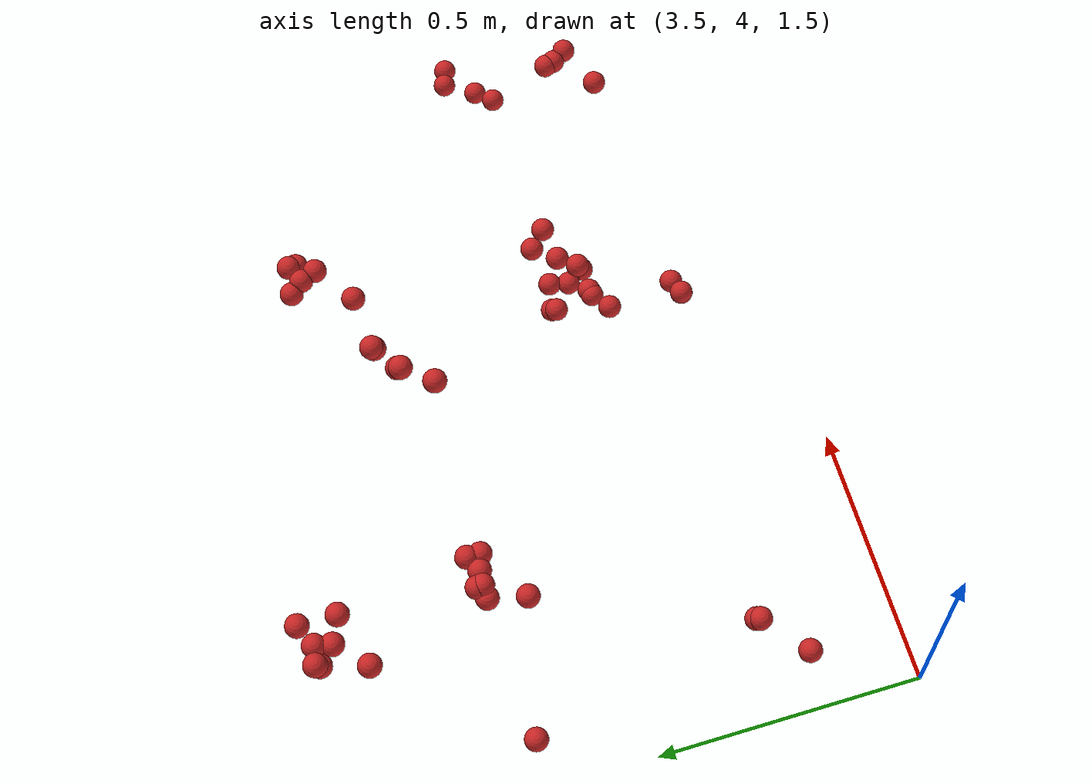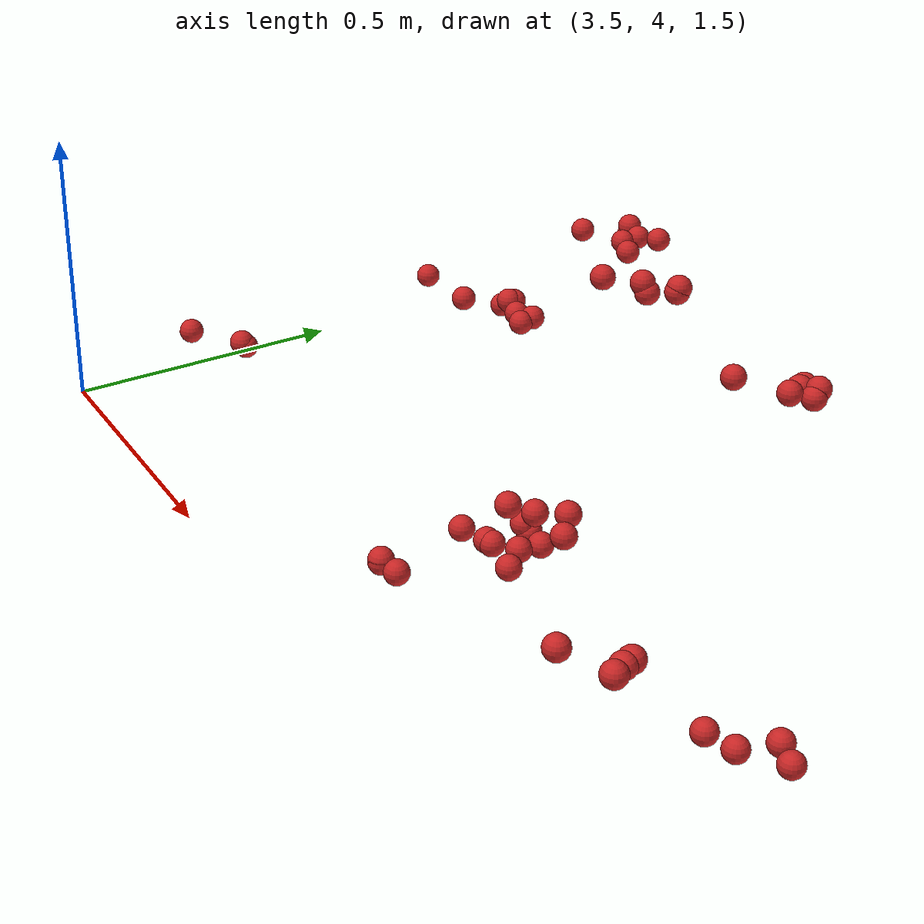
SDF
<sdf version="1.4">
 <model name="fruit_population">
  <static>true</static>
  <link name="fruit_8">
   <pose>4.800786928065491 4.220000212152883 1.6644385118078058 0 0 0</pose>
   <collision name="fruit_collision_8"><geometry><sphere><radius>0.022</radius></sphere></geometry></collision>
   <visual name="visual">
    <geometry><sphere><radius>0.022</radius></sphere></geometry>
    <material><script><name>Gazebo/Red</name></script></material>
   </visual>
   <inertial>
    <mass>0.05</mass>
    <inertia>
     <ixx>9.679999999999999e-06</ixx>
     <ixy>0.0</ixy>
     <ixz>0.0</ixz>
     <iyy>9.679999999999999e-06</iyy>
     <iyz>0.0</iyz>
     <izz>9.679999999999999e-06</izz>
    </inertia>
   </inertial>
   <sensor name="fruit_contact_8" type="contact">
    <plugin name="contact_plugin_8" filename="libcontact_plugin.so"/>
    <contact><collision>fruit_collision_8</collision><topic>fruit_contact_topic_8</topic></contact>
   </sensor>
  </link>
  <link name="fruit_16">
   <pose>3.8010586235003334 4.648232293543347 1.6679768831539061 0 0 0</pose>
   <collision name="fruit_collision_16"><geometry><sphere><radius>0.022</radius></sphere></geometry></collision>
   <visual name="visual">
    <geometry><sphere><radius>0.022</radius></sphere></geometry>
    <material><script><name>Gazebo/Red</name></script></material>
   </visual>
   <inertial>
    <mass>0.05</mass>
    <inertia>
     <ixx>9.679999999999999e-06</ixx>
     <ixy>0.0</ixy>
     <ixz>0.0</ixz>
     <iyy>9.679999999999999e-06</iyy>
     <iyz>0.0</iyz>
     <izz>9.679999999999999e-06</izz>
    </inertia>
   </inertial>
   <sensor name="fruit_contact_16" type="contact">
    <plugin name="contact_plugin_16" filename="libcontact_plugin.so"/>
    <contact><collision>fruit_collision_16</collision><topic>fruit_contact_topic_16</topic></contact>
   </sensor>
  </link>
  <link name="fruit_45">
   <pose>3.5760182626768957 4.195160195155106 1.6130695969784774 0 0 0</pose>
   <collision name="fruit_collision_45"><geometry><sphere><radius>0.022</radius></sphere></geometry></collision>
   <visual name="visual">
    <geometry><sphere><radius>0.022</radius></sphere></geometry>
    <material><script><name>Gazebo/Red</name></script></material>
   </visual>
   <inertial>
    <mass>0.05</mass>
    <inertia>
     <ixx>9.679999999999999e-06</ixx>
     <ixy>0.0</ixy>
     <ixz>0.0</ixz>
     <iyy>9.679999999999999e-06</iyy>
     <iyz>0.0</iyz>
     <izz>9.679999999999999e-06</izz>
    </inertia>
   </inertial>
   <sensor name="fruit_contact_45" type="contact">
    <plugin name="contact_plugin_45" filename="libcontact_plugin.so"/>
    <contact><collision>fruit_collision_45</collision><topic>fruit_contact_topic_45</topic></contact>
   </sensor>
  </link>
  <link name="fruit_85">
   <pose>4.354477763276299 4.325203728067418 1.5766600767156744 0 0 0</pose>
   <collision name="fruit_collision_85"><geometry><sphere><radius>0.022</radius></sphere></geometry></collision>
   <visual name="visual">
    <geometry><sphere><radius>0.022</radius></sphere></geometry>
    <material><script><name>Gazebo/Red</name></script></material>
   </visual>
   <inertial>
    <mass>0.05</mass>
    <inertia>
     <ixx>9.679999999999999e-06</ixx>
     <ixy>0.0</ixy>
     <ixz>0.0</ixz>
     <iyy>9.679999999999999e-06</iyy>
     <iyz>0.0</iyz>
     <izz>9.679999999999999e-06</izz>
    </inertia>
   </inertial>
   <sensor name="fruit_contact_85" type="contact">
    <plugin name="contact_plugin_85" filename="libcontact_plugin.so"/>
    <contact><collision>fruit_collision_85</collision><topic>fruit_contact_topic_85</topic></contact>
   </sensor>
  </link>
  <link name="fruit_114">
   <pose>4.423361353055806 4.369155187507838 1.6454701443695605 0 0 0</pose>
   <collision name="fruit_collision_114"><geometry><sphere><radius>0.022</radius></sphere></geometry></collision>
   <visual name="visual">
    <geometry><sphere><radius>0.022</radius></sphere></geometry>
    <material><script><name>Gazebo/Red</name></script></material>
   </visual>
   <inertial>
    <mass>0.05</mass>
    <inertia>
     <ixx>9.679999999999999e-06</ixx>
     <ixy>0.0</ixy>
     <ixz>0.0</ixz>
     <iyy>9.679999999999999e-06</iyy>
     <iyz>0.0</iyz>
     <izz>9.679999999999999e-06</izz>
    </inertia>
   </inertial>
   <sensor name="fruit_contact_114" type="contact">
    <plugin name="contact_plugin_114" filename="libcontact_plugin.so"/>
    <contact><collision>fruit_collision_114</collision><topic>fruit_contact_topic_114</topic></contact>
   </sensor>
  </link>
  <link name="fruit_116">
   <pose>4.912617143801908 4.404082833513764 1.5214832260241566 0 0 0</pose>
   <collision name="fruit_collision_116"><geometry><sphere><radius>0.022</radius></sphere></geometry></collision>
   <visual name="visual">
    <geometry><sphere><radius>0.022</radius></sphere></geometry>
    <material><script><name>Gazebo/Red</name></script></material>
   </visual>
   <inertial>
    <mass>0.05</mass>
    <inertia>
     <ixx>9.679999999999999e-06</ixx>
     <ixy>0.0</ixy>
     <ixz>0.0</ixz>
     <iyy>9.679999999999999e-06</iyy>
     <iyz>0.0</iyz>
     <izz>9.679999999999999e-06</izz>
    </inertia>
   </inertial>
   <sensor name="fruit_contact_116" type="contact">
    <plugin name="contact_plugin_116" filename="libcontact_plugin.so"/>
    <contact><collision>fruit_collision_116</collision><topic>fruit_contact_topic_116</topic></contact>
   </sensor>
  </link>
  <link name="fruit_118">
   <pose>4.4188331815659385 4.800424668343499 1.7561250913964206 0 0 0</pose>
   <collision name="fruit_collision_118"><geometry><sphere><radius>0.022</radius></sphere></geometry></collision>
   <visual name="visual">
    <geometry><sphere><radius>0.022</radius></sphere></geometry>
    <material><script><name>Gazebo/Red</name></script></material>
   </visual>
   <inertial>
    <mass>0.05</mass>
    <inertia>
     <ixx>9.679999999999999e-06</ixx>
     <ixy>0.0</ixy>
     <ixz>0.0</ixz>
     <iyy>9.679999999999999e-06</iyy>
     <iyz>0.0</iyz>
     <izz>9.679999999999999e-06</izz>
    </inertia>
   </inertial>
   <sensor name="fruit_contact_118" type="contact">
    <plugin name="contact_plugin_118" filename="libcontact_plugin.so"/>
    <contact><collision>fruit_collision_118</collision><topic>fruit_contact_topic_118</topic></contact>
   </sensor>
  </link>
  <link name="fruit_126">
   <pose>3.742768854331844 4.9462025659549145 1.7166812805871299 0 0 0</pose>
   <collision name="fruit_collision_126"><geometry><sphere><radius>0.022</radius></sphere></geometry></collision>
   <visual name="visual">
    <geometry><sphere><radius>0.022</radius></sphere></geometry>
    <material><script><name>Gazebo/Red</name></script></material>
   </visual>
   <inertial>
    <mass>0.05</mass>
    <inertia>
     <ixx>9.679999999999999e-06</ixx>
     <ixy>0.0</ixy>
     <ixz>0.0</ixz>
     <iyy>9.679999999999999e-06</iyy>
     <iyz>0.0</iyz>
     <izz>9.679999999999999e-06</izz>
    </inertia>
   </inertial>
   <sensor name="fruit_contact_126" type="contact">
    <plugin name="contact_plugin_126" filename="libcontact_plugin.so"/>
    <contact><collision>fruit_collision_126</collision><topic>fruit_contact_topic_126</topic></contact>
   </sensor>
  </link>
  <link name="fruit_172">
   <pose>4.1660404960261275 4.70667149064895 1.8528183899163075 0 0 0</pose>
   <collision name="fruit_collision_172"><geometry><sphere><radius>0.022</radius></sphere></geometry></collision>
   <visual name="visual">
    <geometry><sphere><radius>0.022</radius></sphere></geometry>
    <material><script><name>Gazebo/Red</name></script></material>
   </visual>
   <inertial>
    <mass>0.05</mass>
    <inertia>
     <ixx>9.679999999999999e-06</ixx>
     <ixy>0.0</ixy>
     <ixz>0.0</ixz>
     <iyy>9.679999999999999e-06</iyy>
     <iyz>0.0</iyz>
     <izz>9.679999999999999e-06</izz>
    </inertia>
   </inertial>
   <sensor name="fruit_contact_172" type="contact">
    <plugin name="contact_plugin_172" filename="libcontact_plugin.so"/>
    <contact><collision>fruit_collision_172</collision><topic>fruit_contact_topic_172</topic></contact>
   </sensor>
  </link>
  <link name="fruit_183">
   <pose>4.453477421447629 4.400530145803158 1.6378853848655108 0 0 0</pose>
   <collision name="fruit_collision_183"><geometry><sphere><radius>0.022</radius></sphere></geometry></collision>
   <visual name="visual">
    <geometry><sphere><radius>0.022</radius></sphere></geometry>
    <material><script><name>Gazebo/Red</name></script></material>
   </visual>
   <inertial>
    <mass>0.05</mass>
    <inertia>
     <ixx>9.679999999999999e-06</ixx>
     <ixy>0.0</ixy>
     <ixz>0.0</ixz>
     <iyy>9.679999999999999e-06</iyy>
     <iyz>0.0</iyz>
     <izz>9.679999999999999e-06</izz>
    </inertia>
   </inertial>
   <sensor name="fruit_contact_183" type="contact">
    <plugin name="contact_plugin_183" filename="libcontact_plugin.so"/>
    <contact><collision>fruit_collision_183</collision><topic>fruit_contact_topic_183</topic></contact>
   </sensor>
  </link>
  <link name="fruit_184">
   <pose>4.405410311610533 4.351728202609661 1.56812083813322 0 0 0</pose>
   <collision name="fruit_collision_184"><geometry><sphere><radius>0.022</radius></sphere></geometry></collision>
   <visual name="visual">
    <geometry><sphere><radius>0.022</radius></sphere></geometry>
    <material><script><name>Gazebo/Red</name></script></material>
   </visual>
   <inertial>
    <mass>0.05</mass>
    <inertia>
     <ixx>9.679999999999999e-06</ixx>
     <ixy>0.0</ixy>
     <ixz>0.0</ixz>
     <iyy>9.679999999999999e-06</iyy>
     <iyz>0.0</iyz>
     <izz>9.679999999999999e-06</izz>
    </inertia>
   </inertial>
   <sensor name="fruit_contact_184" type="contact">
    <plugin name="contact_plugin_184" filename="libcontact_plugin.so"/>
    <contact><collision>fruit_collision_184</collision><topic>fruit_contact_topic_184</topic></contact>
   </sensor>
  </link>
  <link name="fruit_194">
   <pose>3.658850037830228 4.259778614274349 1.6105875539122085 0 0 0</pose>
   <collision name="fruit_collision_194"><geometry><sphere><radius>0.022</radius></sphere></geometry></collision>
   <visual name="visual">
    <geometry><sphere><radius>0.022</radius></sphere></geometry>
    <material><script><name>Gazebo/Red</name></script></material>
   </visual>
   <inertial>
    <mass>0.05</mass>
    <inertia>
     <ixx>9.679999999999999e-06</ixx>
     <ixy>0.0</ixy>
     <ixz>0.0</ixz>
     <iyy>9.679999999999999e-06</iyy>
     <iyz>0.0</iyz>
     <izz>9.679999999999999e-06</izz>
    </inertia>
   </inertial>
   <sensor name="fruit_contact_194" type="contact">
    <plugin name="contact_plugin_194" filename="libcontact_plugin.so"/>
    <contact><collision>fruit_collision_194</collision><topic>fruit_contact_topic_194</topic></contact>
   </sensor>
  </link>
  <link name="fruit_206">
   <pose>5.019707370111052 4.47834298955333 1.5080253796429584 0 0 0</pose>
   <collision name="fruit_collision_206"><geometry><sphere><radius>0.022</radius></sphere></geometry></collision>
   <visual name="visual">
    <geometry><sphere><radius>0.022</radius></sphere></geometry>
    <material><script><name>Gazebo/Red</name></script></material>
   </visual>
   <inertial>
    <mass>0.05</mass>
    <inertia>
     <ixx>9.679999999999999e-06</ixx>
     <ixy>0.0</ixy>
     <ixz>0.0</ixz>
     <iyy>9.679999999999999e-06</iyy>
     <iyz>0.0</iyz>
     <izz>9.679999999999999e-06</izz>
    </inertia>
   </inertial>
   <sensor name="fruit_contact_206" type="contact">
    <plugin name="contact_plugin_206" filename="libcontact_plugin.so"/>
    <contact><collision>fruit_collision_206</collision><topic>fruit_contact_topic_206</topic></contact>
   </sensor>
  </link>
  <link name="fruit_223">
   <pose>4.498775829638822 4.854358825902593 1.750554658753304 0 0 0</pose>
   <collision name="fruit_collision_223"><geometry><sphere><radius>0.022</radius></sphere></geometry></collision>
   <visual name="visual">
    <geometry><sphere><radius>0.022</radius></sphere></geometry>
    <material><script><name>Gazebo/Red</name></script></material>
   </visual>
   <inertial>
    <mass>0.05</mass>
    <inertia>
     <ixx>9.679999999999999e-06</ixx>
     <ixy>0.0</ixy>
     <ixz>0.0</ixz>
     <iyy>9.679999999999999e-06</iyy>
     <iyz>0.0</iyz>
     <izz>9.679999999999999e-06</izz>
    </inertia>
   </inertial>
   <sensor name="fruit_contact_223" type="contact">
    <plugin name="contact_plugin_223" filename="libcontact_plugin.so"/>
    <contact><collision>fruit_collision_223</collision><topic>fruit_contact_topic_223</topic></contact>
   </sensor>
  </link>
  <link name="fruit_231">
   <pose>3.8490912041075416 5.04903982708296 1.7154292277089622 0 0 0</pose>
   <collision name="fruit_collision_231"><geometry><sphere><radius>0.022</radius></sphere></geometry></collision>
   <visual name="visual">
    <geometry><sphere><radius>0.022</radius></sphere></geometry>
    <material><script><name>Gazebo/Red</name></script></material>
   </visual>
   <inertial>
    <mass>0.05</mass>
    <inertia>
     <ixx>9.679999999999999e-06</ixx>
     <ixy>0.0</ixy>
     <ixz>0.0</ixz>
     <iyy>9.679999999999999e-06</iyy>
     <iyz>0.0</iyz>
     <izz>9.679999999999999e-06</izz>
    </inertia>
   </inertial>
   <sensor name="fruit_contact_231" type="contact">
    <plugin name="contact_plugin_231" filename="libcontact_plugin.so"/>
    <contact><collision>fruit_collision_231</collision><topic>fruit_contact_topic_231</topic></contact>
   </sensor>
  </link>
  <link name="fruit_276">
   <pose>4.5230287979494594 4.8853600711418945 1.74473065197198 0 0 0</pose>
   <collision name="fruit_collision_276"><geometry><sphere><radius>0.022</radius></sphere></geometry></collision>
   <visual name="visual">
    <geometry><sphere><radius>0.022</radius></sphere></geometry>
    <material><script><name>Gazebo/Red</name></script></material>
   </visual>
   <inertial>
    <mass>0.05</mass>
    <inertia>
     <ixx>9.679999999999999e-06</ixx>
     <ixy>0.0</ixy>
     <ixz>0.0</ixz>
     <iyy>9.679999999999999e-06</iyy>
     <iyz>0.0</iyz>
     <izz>9.679999999999999e-06</izz>
    </inertia>
   </inertial>
   <sensor name="fruit_contact_276" type="contact">
    <plugin name="contact_plugin_276" filename="libcontact_plugin.so"/>
    <contact><collision>fruit_collision_276</collision><topic>fruit_contact_topic_276</topic></contact>
   </sensor>
  </link>
  <link name="fruit_290">
   <pose>3.566881579972993 4.7035963276467765 1.6022946473488755 0 0 0</pose>
   <collision name="fruit_collision_290"><geometry><sphere><radius>0.022</radius></sphere></geometry></collision>
   <visual name="visual">
    <geometry><sphere><radius>0.022</radius></sphere></geometry>
    <material><script><name>Gazebo/Red</name></script></material>
   </visual>
   <inertial>
    <mass>0.05</mass>
    <inertia>
     <ixx>9.679999999999999e-06</ixx>
     <ixy>0.0</ixy>
     <ixz>0.0</ixz>
     <iyy>9.679999999999999e-06</iyy>
     <iyz>0.0</iyz>
     <izz>9.679999999999999e-06</izz>
    </inertia>
   </inertial>
   <sensor name="fruit_contact_290" type="contact">
    <plugin name="contact_plugin_290" filename="libcontact_plugin.so"/>
    <contact><collision>fruit_collision_290</collision><topic>fruit_contact_topic_290</topic></contact>
   </sensor>
  </link>
  <link name="fruit_291">
   <pose>4.980217523034297 4.489495512884834 1.5156227475393103 0 0 0</pose>
   <collision name="fruit_collision_291"><geometry><sphere><radius>0.022</radius></sphere></geometry></collision>
   <visual name="visual">
    <geometry><sphere><radius>0.022</radius></sphere></geometry>
    <material><script><name>Gazebo/Red</name></script></material>
   </visual>
   <inertial>
    <mass>0.05</mass>
    <inertia>
     <ixx>9.679999999999999e-06</ixx>
     <ixy>0.0</ixy>
     <ixz>0.0</ixz>
     <iyy>9.679999999999999e-06</iyy>
     <iyz>0.0</iyz>
     <izz>9.679999999999999e-06</izz>
    </inertia>
   </inertial>
   <sensor name="fruit_contact_291" type="contact">
    <plugin name="contact_plugin_291" filename="libcontact_plugin.so"/>
    <contact><collision>fruit_collision_291</collision><topic>fruit_contact_topic_291</topic></contact>
   </sensor>
  </link>
  <link name="fruit_297">
   <pose>4.950634229804297 4.4326614623602 1.505215922446986 0 0 0</pose>
   <collision name="fruit_collision_297"><geometry><sphere><radius>0.022</radius></sphere></geometry></collision>
   <visual name="visual">
    <geometry><sphere><radius>0.022</radius></sphere></geometry>
    <material><script><name>Gazebo/Red</name></script></material>
   </visual>
   <inertial>
    <mass>0.05</mass>
    <inertia>
     <ixx>9.679999999999999e-06</ixx>
     <ixy>0.0</ixy>
     <ixz>0.0</ixz>
     <iyy>9.679999999999999e-06</iyy>
     <iyz>0.0</iyz>
     <izz>9.679999999999999e-06</izz>
    </inertia>
   </inertial>
   <sensor name="fruit_contact_297" type="contact">
    <plugin name="contact_plugin_297" filename="libcontact_plugin.so"/>
    <contact><collision>fruit_collision_297</collision><topic>fruit_contact_topic_297</topic></contact>
   </sensor>
  </link>
  <link name="fruit_320">
   <pose>4.38446686632288 4.190261901266001 1.5540478652612673 0 0 0</pose>
   <collision name="fruit_collision_320"><geometry><sphere><radius>0.022</radius></sphere></geometry></collision>
   <visual name="visual">
    <geometry><sphere><radius>0.022</radius></sphere></geometry>
    <material><script><name>Gazebo/Red</name></script></material>
   </visual>
   <inertial>
    <mass>0.05</mass>
    <inertia>
     <ixx>9.679999999999999e-06</ixx>
     <ixy>0.0</ixy>
     <ixz>0.0</ixz>
     <iyy>9.679999999999999e-06</iyy>
     <iyz>0.0</iyz>
     <izz>9.679999999999999e-06</izz>
    </inertia>
   </inertial>
   <sensor name="fruit_contact_320" type="contact">
    <plugin name="contact_plugin_320" filename="libcontact_plugin.so"/>
    <contact><collision>fruit_collision_320</collision><topic>fruit_contact_topic_320</topic></contact>
   </sensor>
  </link>
  <link name="fruit_342">
   <pose>4.471371225127946 4.906289188257424 1.7380559076895248 0 0 0</pose>
   <collision name="fruit_collision_342"><geometry><sphere><radius>0.022</radius></sphere></geometry></collision>
   <visual name="visual">
    <geometry><sphere><radius>0.022</radius></sphere></geometry>
    <material><script><name>Gazebo/Red</name></script></material>
   </visual>
   <inertial>
    <mass>0.05</mass>
    <inertia>
     <ixx>9.679999999999999e-06</ixx>
     <ixy>0.0</ixy>
     <ixz>0.0</ixz>
     <iyy>9.679999999999999e-06</iyy>
     <iyz>0.0</iyz>
     <izz>9.679999999999999e-06</izz>
    </inertia>
   </inertial>
   <sensor name="fruit_contact_342" type="contact">
    <plugin name="contact_plugin_342" filename="libcontact_plugin.so"/>
    <contact><collision>fruit_collision_342</collision><topic>fruit_contact_topic_342</topic></contact>
   </sensor>
  </link>
  <link name="fruit_345">
   <pose>4.393212028544922 4.349024499610784 1.5683655938861751 0 0 0</pose>
   <collision name="fruit_collision_345"><geometry><sphere><radius>0.022</radius></sphere></geometry></collision>
   <visual name="visual">
    <geometry><sphere><radius>0.022</radius></sphere></geometry>
    <material><script><name>Gazebo/Red</name></script></material>
   </visual>
   <inertial>
    <mass>0.05</mass>
    <inertia>
     <ixx>9.679999999999999e-06</ixx>
     <ixy>0.0</ixy>
     <ixz>0.0</ixz>
     <iyy>9.679999999999999e-06</iyy>
     <iyz>0.0</iyz>
     <izz>9.679999999999999e-06</izz>
    </inertia>
   </inertial>
   <sensor name="fruit_contact_345" type="contact">
    <plugin name="contact_plugin_345" filename="libcontact_plugin.so"/>
    <contact><collision>fruit_collision_345</collision><topic>fruit_contact_topic_345</topic></contact>
   </sensor>
  </link>
  <link name="fruit_348">
   <pose>4.219062843210501 4.761822163706592 1.8337935369312834 0 0 0</pose>
   <collision name="fruit_collision_348"><geometry><sphere><radius>0.022</radius></sphere></geometry></collision>
   <visual name="visual">
    <geometry><sphere><radius>0.022</radius></sphere></geometry>
    <material><script><name>Gazebo/Red</name></script></material>
   </visual>
   <inertial>
    <mass>0.05</mass>
    <inertia>
     <ixx>9.679999999999999e-06</ixx>
     <ixy>0.0</ixy>
     <ixz>0.0</ixz>
     <iyy>9.679999999999999e-06</iyy>
     <iyz>0.0</iyz>
     <izz>9.679999999999999e-06</izz>
    </inertia>
   </inertial>
   <sensor name="fruit_contact_348" type="contact">
    <plugin name="contact_plugin_348" filename="libcontact_plugin.so"/>
    <contact><collision>fruit_collision_348</collision><topic>fruit_contact_topic_348</topic></contact>
   </sensor>
  </link>
  <link name="fruit_373">
   <pose>4.460210954367017 4.350119424943857 1.5547737811571516 0 0 0</pose>
   <collision name="fruit_collision_373"><geometry><sphere><radius>0.022</radius></sphere></geometry></collision>
   <visual name="visual">
    <geometry><sphere><radius>0.022</radius></sphere></geometry>
    <material><script><name>Gazebo/Red</name></script></material>
   </visual>
   <inertial>
    <mass>0.05</mass>
    <inertia>
     <ixx>9.679999999999999e-06</ixx>
     <ixy>0.0</ixy>
     <ixz>0.0</ixz>
     <iyy>9.679999999999999e-06</iyy>
     <iyz>0.0</iyz>
     <izz>9.679999999999999e-06</izz>
    </inertia>
   </inertial>
   <sensor name="fruit_contact_373" type="contact">
    <plugin name="contact_plugin_373" filename="libcontact_plugin.so"/>
    <contact><collision>fruit_collision_373</collision><topic>fruit_contact_topic_373</topic></contact>
   </sensor>
  </link>
  <link name="fruit_386">
   <pose>3.8518288535181604 4.977507780107205 1.7075925525429145 0 0 0</pose>
   <collision name="fruit_collision_386"><geometry><sphere><radius>0.022</radius></sphere></geometry></collision>
   <visual name="visual">
    <geometry><sphere><radius>0.022</radius></sphere></geometry>
    <material><script><name>Gazebo/Red</name></script></material>
   </visual>
   <inertial>
    <mass>0.05</mass>
    <inertia>
     <ixx>9.679999999999999e-06</ixx>
     <ixy>0.0</ixy>
     <ixz>0.0</ixz>
     <iyy>9.679999999999999e-06</iyy>
     <iyz>0.0</iyz>
     <izz>9.679999999999999e-06</izz>
    </inertia>
   </inertial>
   <sensor name="fruit_contact_386" type="contact">
    <plugin name="contact_plugin_386" filename="libcontact_plugin.so"/>
    <contact><collision>fruit_collision_386</collision><topic>fruit_contact_topic_386</topic></contact>
   </sensor>
  </link>
  <link name="fruit_390">
   <pose>3.8084397391758675 5.029995702410868 1.708661426484611 0 0 0</pose>
   <collision name="fruit_collision_390"><geometry><sphere><radius>0.022</radius></sphere></geometry></collision>
   <visual name="visual">
    <geometry><sphere><radius>0.022</radius></sphere></geometry>
    <material><script><name>Gazebo/Red</name></script></material>
   </visual>
   <inertial>
    <mass>0.05</mass>
    <inertia>
     <ixx>9.679999999999999e-06</ixx>
     <ixy>0.0</ixy>
     <ixz>0.0</ixz>
     <iyy>9.679999999999999e-06</iyy>
     <iyz>0.0</iyz>
     <izz>9.679999999999999e-06</izz>
    </inertia>
   </inertial>
   <sensor name="fruit_contact_390" type="contact">
    <plugin name="contact_plugin_390" filename="libcontact_plugin.so"/>
    <contact><collision>fruit_collision_390</collision><topic>fruit_contact_topic_390</topic></contact>
   </sensor>
  </link>
  <link name="fruit_417">
   <pose>3.908087529457598 4.7320681723559375 1.6547977042032762 0 0 0</pose>
   <collision name="fruit_collision_417"><geometry><sphere><radius>0.022</radius></sphere></geometry></collision>
   <visual name="visual">
    <geometry><sphere><radius>0.022</radius></sphere></geometry>
    <material><script><name>Gazebo/Red</name></script></material>
   </visual>
   <inertial>
    <mass>0.05</mass>
    <inertia>
     <ixx>9.679999999999999e-06</ixx>
     <ixy>0.0</ixy>
     <ixz>0.0</ixz>
     <iyy>9.679999999999999e-06</iyy>
     <iyz>0.0</iyz>
     <izz>9.679999999999999e-06</izz>
    </inertia>
   </inertial>
   <sensor name="fruit_contact_417" type="contact">
    <plugin name="contact_plugin_417" filename="libcontact_plugin.so"/>
    <contact><collision>fruit_collision_417</collision><topic>fruit_contact_topic_417</topic></contact>
   </sensor>
  </link>
  <link name="fruit_425">
   <pose>4.525387391149028 4.408601152501039 1.6325685571147488 0 0 0</pose>
   <collision name="fruit_collision_425"><geometry><sphere><radius>0.022</radius></sphere></geometry></collision>
   <visual name="visual">
    <geometry><sphere><radius>0.022</radius></sphere></geometry>
    <material><script><name>Gazebo/Red</name></script></material>
   </visual>
   <inertial>
    <mass>0.05</mass>
    <inertia>
     <ixx>9.679999999999999e-06</ixx>
     <ixy>0.0</ixy>
     <ixz>0.0</ixz>
     <iyy>9.679999999999999e-06</iyy>
     <iyz>0.0</iyz>
     <izz>9.679999999999999e-06</izz>
    </inertia>
   </inertial>
   <sensor name="fruit_contact_425" type="contact">
    <plugin name="contact_plugin_425" filename="libcontact_plugin.so"/>
    <contact><collision>fruit_collision_425</collision><topic>fruit_contact_topic_425</topic></contact>
   </sensor>
  </link>
  <link name="fruit_467">
   <pose>4.517148446248663 4.898806006746606 1.7547951885936175 0 0 0</pose>
   <collision name="fruit_collision_467"><geometry><sphere><radius>0.022</radius></sphere></geometry></collision>
   <visual name="visual">
    <geometry><sphere><radius>0.022</radius></sphere></geometry>
    <material><script><name>Gazebo/Red</name></script></material>
   </visual>
   <inertial>
    <mass>0.05</mass>
    <inertia>
     <ixx>9.679999999999999e-06</ixx>
     <ixy>0.0</ixy>
     <ixz>0.0</ixz>
     <iyy>9.679999999999999e-06</iyy>
     <iyz>0.0</iyz>
     <izz>9.679999999999999e-06</izz>
    </inertia>
   </inertial>
   <sensor name="fruit_contact_467" type="contact">
    <plugin name="contact_plugin_467" filename="libcontact_plugin.so"/>
    <contact><collision>fruit_collision_467</collision><topic>fruit_contact_topic_467</topic></contact>
   </sensor>
  </link>
  <link name="fruit_471">
   <pose>3.662956399224076 4.265417030570322 1.6032949837999615 0 0 0</pose>
   <collision name="fruit_collision_471"><geometry><sphere><radius>0.022</radius></sphere></geometry></collision>
   <visual name="visual">
    <geometry><sphere><radius>0.022</radius></sphere></geometry>
    <material><script><name>Gazebo/Red</name></script></material>
   </visual>
   <inertial>
    <mass>0.05</mass>
    <inertia>
     <ixx>9.679999999999999e-06</ixx>
     <ixy>0.0</ixy>
     <ixz>0.0</ixz>
     <iyy>9.679999999999999e-06</iyy>
     <iyz>0.0</iyz>
     <izz>9.679999999999999e-06</izz>
    </inertia>
   </inertial>
   <sensor name="fruit_contact_471" type="contact">
    <plugin name="contact_plugin_471" filename="libcontact_plugin.so"/>
    <contact><collision>fruit_collision_471</collision><topic>fruit_contact_topic_471</topic></contact>
   </sensor>
  </link>
  <link name="fruit_494">
   <pose>4.891622021728507 4.256144879168211 1.6639292008848485 0 0 0</pose>
   <collision name="fruit_collision_494"><geometry><sphere><radius>0.022</radius></sphere></geometry></collision>
   <visual name="visual">
    <geometry><sphere><radius>0.022</radius></sphere></geometry>
    <material><script><name>Gazebo/Red</name></script></material>
   </visual>
   <inertial>
    <mass>0.05</mass>
    <inertia>
     <ixx>9.679999999999999e-06</ixx>
     <ixy>0.0</ixy>
     <ixz>0.0</ixz>
     <iyy>9.679999999999999e-06</iyy>
     <iyz>0.0</iyz>
     <izz>9.679999999999999e-06</izz>
    </inertia>
   </inertial>
   <sensor name="fruit_contact_494" type="contact">
    <plugin name="contact_plugin_494" filename="libcontact_plugin.so"/>
    <contact><collision>fruit_collision_494</collision><topic>fruit_contact_topic_494</topic></contact>
   </sensor>
  </link>
  <link name="fruit_497">
   <pose>3.7709259506144805 5.03579120226658 1.7165081634796433 0 0 0</pose>
   <collision name="fruit_collision_497"><geometry><sphere><radius>0.022</radius></sphere></geometry></collision>
   <visual name="visual">
    <geometry><sphere><radius>0.022</radius></sphere></geometry>
    <material><script><name>Gazebo/Red</name></script></material>
   </visual>
   <inertial>
    <mass>0.05</mass>
    <inertia>
     <ixx>9.679999999999999e-06</ixx>
     <ixy>0.0</ixy>
     <ixz>0.0</ixz>
     <iyy>9.679999999999999e-06</iyy>
     <iyz>0.0</iyz>
     <izz>9.679999999999999e-06</izz>
    </inertia>
   </inertial>
   <sensor name="fruit_contact_497" type="contact">
    <plugin name="contact_plugin_497" filename="libcontact_plugin.so"/>
    <contact><collision>fruit_collision_497</collision><topic>fruit_contact_topic_497</topic></contact>
   </sensor>
  </link>
  <link name="fruit_499">
   <pose>4.869997068080471 4.300543848486366 1.6594288500186918 0 0 0</pose>
   <collision name="fruit_collision_499"><geometry><sphere><radius>0.022</radius></sphere></geometry></collision>
   <visual name="visual">
    <geometry><sphere><radius>0.022</radius></sphere></geometry>
    <material><script><name>Gazebo/Red</name></script></material>
   </visual>
   <inertial>
    <mass>0.05</mass>
    <inertia>
     <ixx>9.679999999999999e-06</ixx>
     <ixy>0.0</ixy>
     <ixz>0.0</ixz>
     <iyy>9.679999999999999e-06</iyy>
     <iyz>0.0</iyz>
     <izz>9.679999999999999e-06</izz>
    </inertia>
   </inertial>
   <sensor name="fruit_contact_499" type="contact">
    <plugin name="contact_plugin_499" filename="libcontact_plugin.so"/>
    <contact><collision>fruit_collision_499</collision><topic>fruit_contact_topic_499</topic></contact>
   </sensor>
  </link>
  <link name="fruit_533">
   <pose>3.9089531357153255 4.706757032808401 1.651441325556699 0 0 0</pose>
   <collision name="fruit_collision_533"><geometry><sphere><radius>0.022</radius></sphere></geometry></collision>
   <visual name="visual">
    <geometry><sphere><radius>0.022</radius></sphere></geometry>
    <material><script><name>Gazebo/Red</name></script></material>
   </visual>
   <inertial>
    <mass>0.05</mass>
    <inertia>
     <ixx>9.679999999999999e-06</ixx>
     <ixy>0.0</ixy>
     <ixz>0.0</ixz>
     <iyy>9.679999999999999e-06</iyy>
     <iyz>0.0</iyz>
     <izz>9.679999999999999e-06</izz>
    </inertia>
   </inertial>
   <sensor name="fruit_contact_533" type="contact">
    <plugin name="contact_plugin_533" filename="libcontact_plugin.so"/>
    <contact><collision>fruit_collision_533</collision><topic>fruit_contact_topic_533</topic></contact>
   </sensor>
  </link>
  <link name="fruit_590">
   <pose>4.210591359138634 4.757754141763698 1.8495809035626893 0 0 0</pose>
   <collision name="fruit_collision_590"><geometry><sphere><radius>0.022</radius></sphere></geometry></collision>
   <visual name="visual">
    <geometry><sphere><radius>0.022</radius></sphere></geometry>
    <material><script><name>Gazebo/Red</name></script></material>
   </visual>
   <inertial>
    <mass>0.05</mass>
    <inertia>
     <ixx>9.679999999999999e-06</ixx>
     <ixy>0.0</ixy>
     <ixz>0.0</ixz>
     <iyy>9.679999999999999e-06</iyy>
     <iyz>0.0</iyz>
     <izz>9.679999999999999e-06</izz>
    </inertia>
   </inertial>
   <sensor name="fruit_contact_590" type="contact">
    <plugin name="contact_plugin_590" filename="libcontact_plugin.so"/>
    <contact><collision>fruit_collision_590</collision><topic>fruit_contact_topic_590</topic></contact>
   </sensor>
  </link>
  <link name="fruit_593">
   <pose>4.441989415133071 4.420592821635048 1.5644486859452051 0 0 0</pose>
   <collision name="fruit_collision_593"><geometry><sphere><radius>0.022</radius></sphere></geometry></collision>
   <visual name="visual">
    <geometry><sphere><radius>0.022</radius></sphere></geometry>
    <material><script><name>Gazebo/Red</name></script></material>
   </visual>
   <inertial>
    <mass>0.05</mass>
    <inertia>
     <ixx>9.679999999999999e-06</ixx>
     <ixy>0.0</ixy>
     <ixz>0.0</ixz>
     <iyy>9.679999999999999e-06</iyy>
     <iyz>0.0</iyz>
     <izz>9.679999999999999e-06</izz>
    </inertia>
   </inertial>
   <sensor name="fruit_contact_593" type="contact">
    <plugin name="contact_plugin_593" filename="libcontact_plugin.so"/>
    <contact><collision>fruit_collision_593</collision><topic>fruit_contact_topic_593</topic></contact>
   </sensor>
  </link>
  <link name="fruit_595">
   <pose>3.877531492974652 4.716399504990692 1.6538358788735876 0 0 0</pose>
   <collision name="fruit_collision_595"><geometry><sphere><radius>0.022</radius></sphere></geometry></collision>
   <visual name="visual">
    <geometry><sphere><radius>0.022</radius></sphere></geometry>
    <material><script><name>Gazebo/Red</name></script></material>
   </visual>
   <inertial>
    <mass>0.05</mass>
    <inertia>
     <ixx>9.679999999999999e-06</ixx>
     <ixy>0.0</ixy>
     <ixz>0.0</ixz>
     <iyy>9.679999999999999e-06</iyy>
     <iyz>0.0</iyz>
     <izz>9.679999999999999e-06</izz>
    </inertia>
   </inertial>
   <sensor name="fruit_contact_595" type="contact">
    <plugin name="contact_plugin_595" filename="libcontact_plugin.so"/>
    <contact><collision>fruit_collision_595</collision><topic>fruit_contact_topic_595</topic></contact>
   </sensor>
  </link>
  <link name="fruit_601">
   <pose>4.434406504887187 4.3842403933092235 1.5627360020907823 0 0 0</pose>
   <collision name="fruit_collision_601"><geometry><sphere><radius>0.022</radius></sphere></geometry></collision>
   <visual name="visual">
    <geometry><sphere><radius>0.022</radius></sphere></geometry>
    <material><script><name>Gazebo/Red</name></script></material>
   </visual>
   <inertial>
    <mass>0.05</mass>
    <inertia>
     <ixx>9.679999999999999e-06</ixx>
     <ixy>0.0</ixy>
     <ixz>0.0</ixz>
     <iyy>9.679999999999999e-06</iyy>
     <iyz>0.0</iyz>
     <izz>9.679999999999999e-06</izz>
    </inertia>
   </inertial>
   <sensor name="fruit_contact_601" type="contact">
    <plugin name="contact_plugin_601" filename="libcontact_plugin.so"/>
    <contact><collision>fruit_collision_601</collision><topic>fruit_contact_topic_601</topic></contact>
   </sensor>
  </link>
  <link name="fruit_610">
   <pose>4.487650566559269 4.883077680435103 1.7473130224561253 0 0 0</pose>
   <collision name="fruit_collision_610"><geometry><sphere><radius>0.022</radius></sphere></geometry></collision>
   <visual name="visual">
    <geometry><sphere><radius>0.022</radius></sphere></geometry>
    <material><script><name>Gazebo/Red</name></script></material>
   </visual>
   <inertial>
    <mass>0.05</mass>
    <inertia>
     <ixx>9.679999999999999e-06</ixx>
     <ixy>0.0</ixy>
     <ixz>0.0</ixz>
     <iyy>9.679999999999999e-06</iyy>
     <iyz>0.0</iyz>
     <izz>9.679999999999999e-06</izz>
    </inertia>
   </inertial>
   <sensor name="fruit_contact_610" type="contact">
    <plugin name="contact_plugin_610" filename="libcontact_plugin.so"/>
    <contact><collision>fruit_collision_610</collision><topic>fruit_contact_topic_610</topic></contact>
   </sensor>
  </link>
  <link name="fruit_611">
   <pose>3.8449566309885626 4.719287126776808 1.66539135795524 0 0 0</pose>
   <collision name="fruit_collision_611"><geometry><sphere><radius>0.022</radius></sphere></geometry></collision>
   <visual name="visual">
    <geometry><sphere><radius>0.022</radius></sphere></geometry>
    <material><script><name>Gazebo/Red</name></script></material>
   </visual>
   <inertial>
    <mass>0.05</mass>
    <inertia>
     <ixx>9.679999999999999e-06</ixx>
     <ixy>0.0</ixy>
     <ixz>0.0</ixz>
     <iyy>9.679999999999999e-06</iyy>
     <iyz>0.0</iyz>
     <izz>9.679999999999999e-06</izz>
    </inertia>
   </inertial>
   <sensor name="fruit_contact_611" type="contact">
    <plugin name="contact_plugin_611" filename="libcontact_plugin.so"/>
    <contact><collision>fruit_collision_611</collision><topic>fruit_contact_topic_611</topic></contact>
   </sensor>
  </link>
  <link name="fruit_617">
   <pose>4.351895791748573 4.179539916131969 1.558687659526609 0 0 0</pose>
   <collision name="fruit_collision_617"><geometry><sphere><radius>0.022</radius></sphere></geometry></collision>
   <visual name="visual">
    <geometry><sphere><radius>0.022</radius></sphere></geometry>
    <material><script><name>Gazebo/Red</name></script></material>
   </visual>
   <inertial>
    <mass>0.05</mass>
    <inertia>
     <ixx>9.679999999999999e-06</ixx>
     <ixy>0.0</ixy>
     <ixz>0.0</ixz>
     <iyy>9.679999999999999e-06</iyy>
     <iyz>0.0</iyz>
     <izz>9.679999999999999e-06</izz>
    </inertia>
   </inertial>
   <sensor name="fruit_contact_617" type="contact">
    <plugin name="contact_plugin_617" filename="libcontact_plugin.so"/>
    <contact><collision>fruit_collision_617</collision><topic>fruit_contact_topic_617</topic></contact>
   </sensor>
  </link>
  <link name="fruit_625">
   <pose>3.8252676038620157 4.71734312089025 1.6483135551904018 0 0 0</pose>
   <collision name="fruit_collision_625"><geometry><sphere><radius>0.022</radius></sphere></geometry></collision>
   <visual name="visual">
    <geometry><sphere><radius>0.022</radius></sphere></geometry>
    <material><script><name>Gazebo/Red</name></script></material>
   </visual>
   <inertial>
    <mass>0.05</mass>
    <inertia>
     <ixx>9.679999999999999e-06</ixx>
     <ixy>0.0</ixy>
     <ixz>0.0</ixz>
     <iyy>9.679999999999999e-06</iyy>
     <iyz>0.0</iyz>
     <izz>9.679999999999999e-06</izz>
    </inertia>
   </inertial>
   <sensor name="fruit_contact_625" type="contact">
    <plugin name="contact_plugin_625" filename="libcontact_plugin.so"/>
    <contact><collision>fruit_collision_625</collision><topic>fruit_contact_topic_625</topic></contact>
   </sensor>
  </link>
  <link name="fruit_634">
   <pose>4.351357684000667 4.180121977259578 1.561843589712129 0 0 0</pose>
   <collision name="fruit_collision_634"><geometry><sphere><radius>0.022</radius></sphere></geometry></collision>
   <visual name="visual">
    <geometry><sphere><radius>0.022</radius></sphere></geometry>
    <material><script><name>Gazebo/Red</name></script></material>
   </visual>
   <inertial>
    <mass>0.05</mass>
    <inertia>
     <ixx>9.679999999999999e-06</ixx>
     <ixy>0.0</ixy>
     <ixz>0.0</ixz>
     <iyy>9.679999999999999e-06</iyy>
     <iyz>0.0</iyz>
     <izz>9.679999999999999e-06</izz>
    </inertia>
   </inertial>
   <sensor name="fruit_contact_634" type="contact">
    <plugin name="contact_plugin_634" filename="libcontact_plugin.so"/>
    <contact><collision>fruit_collision_634</collision><topic>fruit_contact_topic_634</topic></contact>
   </sensor>
  </link>
  <link name="fruit_652">
   <pose>3.8027590383869048 4.998798089600714 1.7047197150462572 0 0 0</pose>
   <collision name="fruit_collision_652"><geometry><sphere><radius>0.022</radius></sphere></geometry></collision>
   <visual name="visual">
    <geometry><sphere><radius>0.022</radius></sphere></geometry>
    <material><script><name>Gazebo/Red</name></script></material>
   </visual>
   <inertial>
    <mass>0.05</mass>
    <inertia>
     <ixx>9.679999999999999e-06</ixx>
     <ixy>0.0</ixy>
     <ixz>0.0</ixz>
     <iyy>9.679999999999999e-06</iyy>
     <iyz>0.0</iyz>
     <izz>9.679999999999999e-06</izz>
    </inertia>
   </inertial>
   <sensor name="fruit_contact_652" type="contact">
    <plugin name="contact_plugin_652" filename="libcontact_plugin.so"/>
    <contact><collision>fruit_collision_652</collision><topic>fruit_contact_topic_652</topic></contact>
   </sensor>
  </link>
  <link name="fruit_717">
   <pose>4.485885228350899 4.44169535724484 1.6401363294547038 0 0 0</pose>
   <collision name="fruit_collision_717"><geometry><sphere><radius>0.022</radius></sphere></geometry></collision>
   <visual name="visual">
    <geometry><sphere><radius>0.022</radius></sphere></geometry>
    <material><script><name>Gazebo/Red</name></script></material>
   </visual>
   <inertial>
    <mass>0.05</mass>
    <inertia>
     <ixx>9.679999999999999e-06</ixx>
     <ixy>0.0</ixy>
     <ixz>0.0</ixz>
     <iyy>9.679999999999999e-06</iyy>
     <iyz>0.0</iyz>
     <izz>9.679999999999999e-06</izz>
    </inertia>
   </inertial>
   <sensor name="fruit_contact_717" type="contact">
    <plugin name="contact_plugin_717" filename="libcontact_plugin.so"/>
    <contact><collision>fruit_collision_717</collision><topic>fruit_contact_topic_717</topic></contact>
   </sensor>
  </link>
  <link name="fruit_723">
   <pose>4.389932473709617 4.430837719999059 1.5568619980506118 0 0 0</pose>
   <collision name="fruit_collision_723"><geometry><sphere><radius>0.022</radius></sphere></geometry></collision>
   <visual name="visual">
    <geometry><sphere><radius>0.022</radius></sphere></geometry>
    <material><script><name>Gazebo/Red</name></script></material>
   </visual>
   <inertial>
    <mass>0.05</mass>
    <inertia>
     <ixx>9.679999999999999e-06</ixx>
     <ixy>0.0</ixy>
     <ixz>0.0</ixz>
     <iyy>9.679999999999999e-06</iyy>
     <iyz>0.0</iyz>
     <izz>9.679999999999999e-06</izz>
    </inertia>
   </inertial>
   <sensor name="fruit_contact_723" type="contact">
    <plugin name="contact_plugin_723" filename="libcontact_plugin.so"/>
    <contact><collision>fruit_collision_723</collision><topic>fruit_contact_topic_723</topic></contact>
   </sensor>
  </link>
  <link name="fruit_729">
   <pose>3.8451521811723968 4.730022293849847 1.6621152465418547 0 0 0</pose>
   <collision name="fruit_collision_729"><geometry><sphere><radius>0.022</radius></sphere></geometry></collision>
   <visual name="visual">
    <geometry><sphere><radius>0.022</radius></sphere></geometry>
    <material><script><name>Gazebo/Red</name></script></material>
   </visual>
   <inertial>
    <mass>0.05</mass>
    <inertia>
     <ixx>9.679999999999999e-06</ixx>
     <ixy>0.0</ixy>
     <ixz>0.0</ixz>
     <iyy>9.679999999999999e-06</iyy>
     <iyz>0.0</iyz>
     <izz>9.679999999999999e-06</izz>
    </inertia>
   </inertial>
   <sensor name="fruit_contact_729" type="contact">
    <plugin name="contact_plugin_729" filename="libcontact_plugin.so"/>
    <contact><collision>fruit_collision_729</collision><topic>fruit_contact_topic_729</topic></contact>
   </sensor>
  </link>
  <link name="fruit_762">
   <pose>3.7739291415228244 5.028505395519753 1.695430092184826 0 0 0</pose>
   <collision name="fruit_collision_762"><geometry><sphere><radius>0.022</radius></sphere></geometry></collision>
   <visual name="visual">
    <geometry><sphere><radius>0.022</radius></sphere></geometry>
    <material><script><name>Gazebo/Red</name></script></material>
   </visual>
   <inertial>
    <mass>0.05</mass>
    <inertia>
     <ixx>9.679999999999999e-06</ixx>
     <ixy>0.0</ixy>
     <ixz>0.0</ixz>
     <iyy>9.679999999999999e-06</iyy>
     <iyz>0.0</iyz>
     <izz>9.679999999999999e-06</izz>
    </inertia>
   </inertial>
   <sensor name="fruit_contact_762" type="contact">
    <plugin name="contact_plugin_762" filename="libcontact_plugin.so"/>
    <contact><collision>fruit_collision_762</collision><topic>fruit_contact_topic_762</topic></contact>
   </sensor>
  </link>
  <link name="fruit_782">
   <pose>4.875886239697853 4.282268374664501 1.659246416605301 0 0 0</pose>
   <collision name="fruit_collision_782"><geometry><sphere><radius>0.022</radius></sphere></geometry></collision>
   <visual name="visual">
    <geometry><sphere><radius>0.022</radius></sphere></geometry>
    <material><script><name>Gazebo/Red</name></script></material>
   </visual>
   <inertial>
    <mass>0.05</mass>
    <inertia>
     <ixx>9.679999999999999e-06</ixx>
     <ixy>0.0</ixy>
     <ixz>0.0</ixz>
     <iyy>9.679999999999999e-06</iyy>
     <iyz>0.0</iyz>
     <izz>9.679999999999999e-06</izz>
    </inertia>
   </inertial>
   <sensor name="fruit_contact_782" type="contact">
    <plugin name="contact_plugin_782" filename="libcontact_plugin.so"/>
    <contact><collision>fruit_collision_782</collision><topic>fruit_contact_topic_782</topic></contact>
   </sensor>
  </link>
  <link name="fruit_801">
   <pose>4.381690464344402 4.424617777130486 1.5701027688589564 0 0 0</pose>
   <collision name="fruit_collision_801"><geometry><sphere><radius>0.022</radius></sphere></geometry></collision>
   <visual name="visual">
    <geometry><sphere><radius>0.022</radius></sphere></geometry>
    <material><script><name>Gazebo/Red</name></script></material>
   </visual>
   <inertial>
    <mass>0.05</mass>
    <inertia>
     <ixx>9.679999999999999e-06</ixx>
     <ixy>0.0</ixy>
     <ixz>0.0</ixz>
     <iyy>9.679999999999999e-06</iyy>
     <iyz>0.0</iyz>
     <izz>9.679999999999999e-06</izz>
    </inertia>
   </inertial>
   <sensor name="fruit_contact_801" type="contact">
    <plugin name="contact_plugin_801" filename="libcontact_plugin.so"/>
    <contact><collision>fruit_collision_801</collision><topic>fruit_contact_topic_801</topic></contact>
   </sensor>
  </link>
  <link name="fruit_806">
   <pose>4.261784106842744 4.792592721784412 1.8458295118348478 0 0 0</pose>
   <collision name="fruit_collision_806"><geometry><sphere><radius>0.022</radius></sphere></geometry></collision>
   <visual name="visual">
    <geometry><sphere><radius>0.022</radius></sphere></geometry>
    <material><script><name>Gazebo/Red</name></script></material>
   </visual>
   <inertial>
    <mass>0.05</mass>
    <inertia>
     <ixx>9.679999999999999e-06</ixx>
     <ixy>0.0</ixy>
     <ixz>0.0</ixz>
     <iyy>9.679999999999999e-06</iyy>
     <iyz>0.0</iyz>
     <izz>9.679999999999999e-06</izz>
    </inertia>
   </inertial>
   <sensor name="fruit_contact_806" type="contact">
    <plugin name="contact_plugin_806" filename="libcontact_plugin.so"/>
    <contact><collision>fruit_collision_806</collision><topic>fruit_contact_topic_806</topic></contact>
   </sensor>
  </link>
  <link name="fruit_807">
   <pose>4.261909743794437 4.795999568010545 1.852262224531962 0 0 0</pose>
   <collision name="fruit_collision_807"><geometry><sphere><radius>0.022</radius></sphere></geometry></collision>
   <visual name="visual">
    <geometry><sphere><radius>0.022</radius></sphere></geometry>
    <material><script><name>Gazebo/Red</name></script></material>
   </visual>
   <inertial>
    <mass>0.05</mass>
    <inertia>
     <ixx>9.679999999999999e-06</ixx>
     <ixy>0.0</ixy>
     <ixz>0.0</ixz>
     <iyy>9.679999999999999e-06</iyy>
     <iyz>0.0</iyz>
     <izz>9.679999999999999e-06</izz>
    </inertia>
   </inertial>
   <sensor name="fruit_contact_807" type="contact">
    <plugin name="contact_plugin_807" filename="libcontact_plugin.so"/>
    <contact><collision>fruit_collision_807</collision><topic>fruit_contact_topic_807</topic></contact>
   </sensor>
  </link>
 </model>
</sdf>
